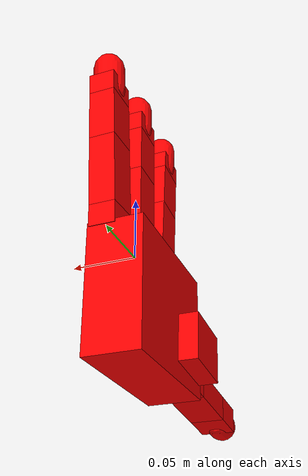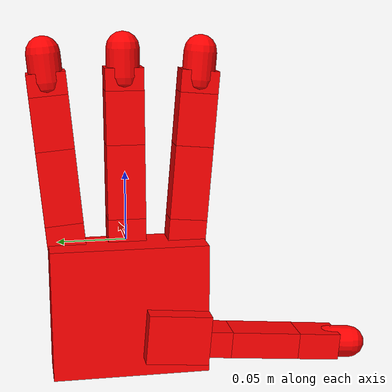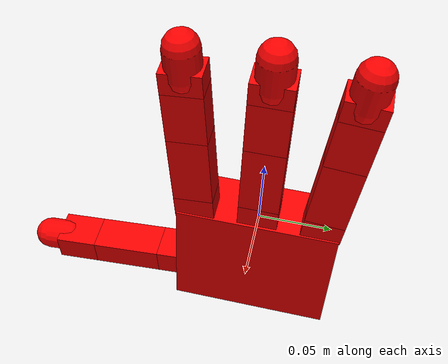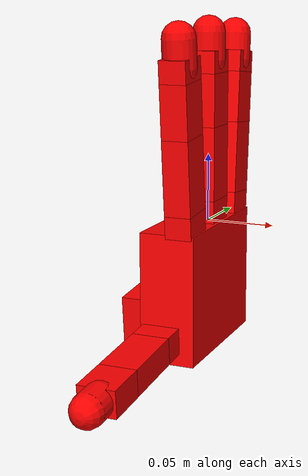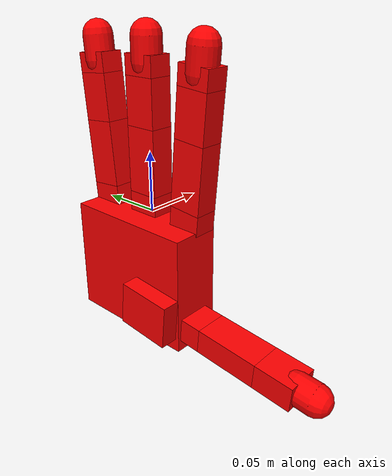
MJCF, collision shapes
<?xml version="1.0" ?>
<mujoco model="allegro_left">
	<compiler meshdir="allegro_left/meshes" texturedir="allegro_left/textures" angle="radian" autolimits="true" balanceinertia="true" boundmass="0.000001" boundinertia="0.000001"/>
	<default>
		<default class="visual">
			<geom contype="0" conaffinity="0"/>
		</default>
		<default class="collision">
			<geom rgba="1.0 0.0 0.0 0.0"/>
		</default>
	</default>
	<asset>
		<mesh name="base_link_left" file="stl/base_link_left.stl" scale="1.0 1.0 1.0"/>
		<mesh name="link_0_0" file="stl/link_0_0.stl" scale="1.0 1.0 1.0"/>
		<mesh name="link_1_0" file="stl/link_1_0.stl" scale="1.0 1.0 1.0"/>
		<mesh name="link_2_0" file="stl/link_2_0.stl" scale="1.0 1.0 1.0"/>
		<mesh name="link_3_0" file="stl/link_3_0.stl" scale="1.0 1.0 1.0"/>
		<mesh name="link_3_0_tip" file="stl/link_3_0_tip.stl" scale="1.0 1.0 1.0"/>
		<mesh name="link_12_0_left" file="stl/link_12_0_left.stl" scale="1.0 1.0 1.0"/>
		<mesh name="link_13_0" file="stl/link_13_0.stl" scale="1.0 1.0 1.0"/>
		<mesh name="link_14_0" file="stl/link_14_0.stl" scale="1.0 1.0 1.0"/>
		<mesh name="link_15_0" file="stl/link_15_0.stl" scale="1.0 1.0 1.0"/>
		<mesh name="link_15_0_tip" file="stl/link_15_0_tip.stl" scale="1.0 1.0 1.0"/>
		<material name="black" rgba="0.20000000298023224 0.20000000298023224 0.20000000298023224 1.0" emission="0.0" specular="0.5"/>
		<material name="white" rgba="0.8999999761581421 0.8999999761581421 0.8999999761581421 1.0" emission="0.0" specular="0.5"/>
	</asset>
	<worldbody>
		<body name="allegro_left" pos="0.0 0.0 0.0" quat="1.0 0.0 0.0 0.0">
			<body name="palm" pos="0.0 0.0 0.0" quat="1.0 0.0 0.0 0.0">
				<geom name="Geom_0" type="mesh" pos="-0.008981602266430855 0.003953646402806044 -0.040257327258586884" quat="0.4720723628997803 -0.8815444707870483 0.003127795411273837 0.00415464723482728" mesh="base_link_left" material="black" class="visual"/>
				<geom name="Geom_1" type="box" pos="-0.00930000003427267 0.0 -0.04749999940395355" quat="1.0 0.0 0.0 0.0" size="0.020400000736117363 0.05649999901652336 0.04749999940395355" class="collision"/>
				<body name="mf_base" pos="0.0 0.0 0.000699999975040555" quat="1.0 0.0 0.0 0.0">
					<inertial mass="0.007232016418129206" pos="-0.0007781272288411856 -1.0286681572324596e-05 0.00828249379992485" quat="0.6841335892677307 0.6859369277954102 -0.17537076771259308 0.1752052754163742" diaginertia="7.653767397641786e-07 6.888429311402433e-07 3.550456995071727e-07"/>
					<geom name="Geom_12" type="mesh" pos="-0.0007781272288411856 -1.0286681572324596e-05 0.00828249379992485" quat="0.6841325759887695 0.685935914516449 -0.1753745824098587 0.17520909011363983" mesh="link_0_0" material="black" class="visual"/>
					<geom name="Geom_13" type="box" pos="0.0 0.0 0.008200000040233135" quat="1.0 0.0 0.0 0.0" size="0.009800000116229057 0.013749999925494194 0.008200000040233135" class="collision"/>
					<joint name="mfj0" type="hinge" pos="0.0 0.0 0.0" range="-0.4699999988079071 0.4699999988079071" axis="0.0 0.0 1.0"/>
					<body name="mf_proximal" pos="0.0 0.0 0.01640000008046627" quat="1.0 0.0 0.0 0.0">
						<inertial mass="0.02727612294256687" pos="2.752533312389005e-08 -9.059566946234554e-05 0.02699976973235607" quat="1.0 -3.062632686123834e-06 1.740644087200316e-11 5.683489234797889e-06" diaginertia="1.1862359315273352e-05 1.1276808436377905e-05 2.2658684883936075e-06"/>
						<geom name="Geom_14" type="mesh" pos="2.752533312389005e-08 -9.059566946234554e-05 0.02699976973235607" quat="1.0 -3.062632686123834e-06 1.740644087200316e-11 5.683489234797889e-06" mesh="link_1_0" material="black" class="visual"/>
						<geom name="Geom_15" type="box" pos="0.0 0.0 0.027000000700354576" quat="1.0 0.0 0.0 0.0" size="0.009800000116229057 0.013749999925494194 0.027000000700354576" class="collision"/>
						<joint name="mfj1" type="hinge" pos="0.0 0.0 0.0" range="-0.19599999487400055 1.6100000143051147" axis="0.0 1.0 0.0"/>
						<body name="mf_medial" pos="0.0 0.0 0.05400000140070915" quat="1.0 0.0 0.0 0.0">
							<inertial mass="0.018463745713233948" pos="-0.0001928815763676539 -7.79042748035863e-05 0.02258601225912571" quat="0.9999030232429504 -0.0002869980817195028 0.013923503458499908 0.00017008630675263703" diaginertia="4.287327556085074e-06 3.6356423152028583e-06 1.6736697716623894e-06"/>
							<geom name="Geom_16" type="mesh" pos="-0.0001928815763676539 -7.79042748035863e-05 0.02258601225912571" quat="0.9999030232429504 -0.0002869980817195028 0.013923479244112968 0.00017008632130455226" mesh="link_2_0" material="black" class="visual"/>
							<geom name="Geom_17" type="box" pos="0.0 0.0 0.019200000911951065" quat="1.0 0.0 0.0 0.0" size="0.009800000116229057 0.013749999925494194 0.019200000911951065" class="collision"/>
							<joint name="mfj2" type="hinge" pos="0.0 0.0 0.0" range="-0.17399999499320984 1.7089999914169312" axis="0.0 1.0 0.0"/>
							<body name="mf_distal" pos="0.0 0.0 0.03840000182390213" quat="1.0 0.0 0.0 0.0">
								<inertial mass="0.007512311451137066" pos="-0.0005208061193116009 -3.324988711028709e-06 0.007251289673149586" quat="0.687752366065979 0.6877181529998779 0.16445226967334747 -0.16430427134037018" diaginertia="7.963795383147954e-07 7.281657872226788e-07 3.777521158099262e-07"/>
								<geom name="Geom_18" type="mesh" pos="-0.0005208061193116009 -3.324988711028709e-06 0.007251289673149586" quat="0.687752366065979 0.6877181529998779 0.16445223987102509 -0.1643042415380478" mesh="link_3_0" material="black" class="visual"/>
								<geom name="Geom_19" type="box" pos="0.0 0.0 0.00800000037997961" quat="1.0 0.0 0.0 0.0" size="0.009800000116229057 0.013749999925494194 0.00800000037997961" class="collision"/>
								<joint name="mfj3" type="hinge" pos="0.0 0.0 0.0" range="-0.22699999809265137 1.6180000305175781" axis="0.0 1.0 0.0"/>
								<body name="mf_tip" pos="0.0 0.0 0.0" quat="1.0 0.0 0.0 0.0">
									<inertial mass="0.006844521500170231" pos="2.0724932187077272e-11 -1.1561289881001358e-07 0.025402763858437538" quat="1.0 0.0 0.0 0.0" diaginertia="4.558230841666955e-07 4.558135913157457e-07 4.4955876887797785e-07"/>
									<geom name="Geom_20" type="mesh" pos="2.0724932187077272e-11 -1.1561289881001358e-07 0.025402763858437538" quat="1.0 0.0 0.0 0.0" mesh="link_3_0_tip" material="white" class="visual"/>
									<geom name="Geom_21" type="capsule" pos="0.0 0.0 0.01899999938905239" quat="1.0 0.0 0.0 0.0" size="0.012000000104308128 0.009999999776482582 0.0" class="collision"/>
								</body>
							</body>
						</body>
					</body>
				</body>
				<body name="ff_base" pos="0.0 -0.04349999874830246 -0.001541999983601272" quat="0.9990482330322266 0.04361940920352936 0.0 0.0">
					<inertial mass="0.007232016418129206" pos="-0.0007781272288411856 -1.0286681572324596e-05 0.00828249379992485" quat="0.6841335892677307 0.6859369277954102 -0.17537076771259308 0.1752052754163742" diaginertia="7.653767397641786e-07 6.888429311402433e-07 3.550456995071727e-07"/>
					<geom name="Geom_22" type="mesh" pos="-0.0007781272288411856 -1.0286681572324596e-05 0.00828249379992485" quat="0.6841325759887695 0.685935914516449 -0.1753745824098587 0.17520909011363983" mesh="link_0_0" material="black" class="visual"/>
					<geom name="Geom_23" type="box" pos="0.0 0.0 0.008200000040233135" quat="1.0 0.0 0.0 0.0" size="0.009800000116229057 0.013749999925494194 0.008200000040233135" class="collision"/>
					<joint name="ffj0" type="hinge" pos="0.0 0.0 0.0" range="-0.4699999988079071 0.4699999988079071" axis="0.0 0.0 1.0"/>
					<body name="ff_proximal" pos="0.0 0.0 0.01640000008046627" quat="1.0 0.0 0.0 0.0">
						<inertial mass="0.02727612294256687" pos="2.752533312389005e-08 -9.059566946234554e-05 0.02699976973235607" quat="1.0 -3.062632686123834e-06 1.740644087200316e-11 5.683489234797889e-06" diaginertia="1.1862359315273352e-05 1.1276808436377905e-05 2.2658684883936075e-06"/>
						<geom name="Geom_24" type="mesh" pos="2.752533312389005e-08 -9.059566946234554e-05 0.02699976973235607" quat="1.0 -3.062632686123834e-06 1.740644087200316e-11 5.683489234797889e-06" mesh="link_1_0" material="black" class="visual"/>
						<geom name="Geom_25" type="box" pos="0.0 0.0 0.027000000700354576" quat="1.0 0.0 0.0 0.0" size="0.009800000116229057 0.013749999925494194 0.027000000700354576" class="collision"/>
						<joint name="ffj1" type="hinge" pos="0.0 0.0 0.0" range="-0.19599999487400055 1.6100000143051147" axis="0.0 1.0 0.0"/>
						<body name="ff_medial" pos="0.0 0.0 0.05400000140070915" quat="1.0 0.0 0.0 0.0">
							<inertial mass="0.018463745713233948" pos="-0.0001928815763676539 -7.79042748035863e-05 0.02258601225912571" quat="0.9999030232429504 -0.0002869980817195028 0.013923503458499908 0.00017008630675263703" diaginertia="4.287327556085074e-06 3.6356423152028583e-06 1.6736697716623894e-06"/>
							<geom name="Geom_26" type="mesh" pos="-0.0001928815763676539 -7.79042748035863e-05 0.02258601225912571" quat="0.9999030232429504 -0.0002869980817195028 0.013923479244112968 0.00017008632130455226" mesh="link_2_0" material="black" class="visual"/>
							<geom name="Geom_27" type="box" pos="0.0 0.0 0.019200000911951065" quat="1.0 0.0 0.0 0.0" size="0.009800000116229057 0.013749999925494194 0.019200000911951065" class="collision"/>
							<joint name="ffj2" type="hinge" pos="0.0 0.0 0.0" range="-0.17399999499320984 1.7089999914169312" axis="0.0 1.0 0.0"/>
							<body name="ff_distal" pos="0.0 0.0 0.03840000182390213" quat="1.0 0.0 0.0 0.0">
								<inertial mass="0.007512311451137066" pos="-0.0005208061193116009 -3.324988711028709e-06 0.007251289673149586" quat="0.687752366065979 0.6877181529998779 0.16445226967334747 -0.16430427134037018" diaginertia="7.963795383147954e-07 7.281657872226788e-07 3.777521158099262e-07"/>
								<geom name="Geom_28" type="mesh" pos="-0.0005208061193116009 -3.324988711028709e-06 0.007251289673149586" quat="0.687752366065979 0.6877181529998779 0.16445223987102509 -0.1643042415380478" mesh="link_3_0" material="black" class="visual"/>
								<geom name="Geom_29" type="box" pos="0.0 0.0 0.00800000037997961" quat="1.0 0.0 0.0 0.0" size="0.009800000116229057 0.013749999925494194 0.00800000037997961" class="collision"/>
								<joint name="ffj3" type="hinge" pos="0.0 0.0 0.0" range="-0.22699999809265137 1.6180000305175781" axis="0.0 1.0 0.0"/>
								<body name="ff_tip" pos="0.0 0.0 0.0" quat="1.0 0.0 0.0 0.0">
									<inertial mass="0.006844521500170231" pos="2.0724932187077272e-11 -1.1561289881001358e-07 0.025402763858437538" quat="1.0 0.0 0.0 0.0" diaginertia="4.558230841666955e-07 4.558135913157457e-07 4.4955876887797785e-07"/>
									<geom name="Geom_30" type="mesh" pos="2.0724932187077272e-11 -1.1561289881001358e-07 0.025402763858437538" quat="1.0 0.0 0.0 0.0" mesh="link_3_0_tip" material="white" class="visual"/>
									<geom name="Geom_31" type="capsule" pos="0.0 0.0 0.01899999938905239" quat="1.0 0.0 0.0 0.0" size="0.012000000104308128 0.009999999776482582 0.0" class="collision"/>
								</body>
							</body>
						</body>
					</body>
				</body>
				<body name="th_base" pos="-0.018200000748038292 -0.019332999363541603 -0.045986998826265335" quat="0.47771409153938293 0.5213341116905212 -0.5213341116905212 0.47771409153938293">
					<inertial mass="0.04008788987994194" pos="-0.017917828634381294 -0.007726367563009262 0.011871053837239742" quat="0.7094714045524597 -0.049823980778455734 0.04688112065196037 0.7014057636260986" diaginertia="1.0974181350320578e-05 9.447705451748334e-06 7.300594006665051e-06"/>
					<geom name="Geom_32" type="mesh" pos="-0.017917828634381294 -0.007726367563009262 0.011871053837239742" quat="0.046881116926670074 0.7014057040214539 -0.7094714641571045 0.04982398822903633" mesh="link_12_0_left" material="black" class="visual"/>
					<geom name="Geom_33" type="box" pos="-0.017899999395012856 0.008999999612569809 0.014499999582767487" quat="1.0 0.0 0.0 0.0" size="0.017899999395012856 0.017000000923871994 0.022749999538064003" class="collision"/>
					<joint name="thj0" type="hinge" pos="0.0 0.0 0.0" range="0.2630000114440918 1.3960000276565552" axis="1.0 0.0 0.0"/>
					<body name="th_proximal" pos="-0.027000000700354576 -0.004999999888241291 0.039900001138448715" quat="1.0 0.0 0.0 0.0">
						<inertial mass="0.007219312246888876" pos="-0.0007820269092917442 -1.0249381375615485e-05 0.008104545064270496" quat="0.6839194893836975 0.6857205629348755 -0.17621275782585144 0.17604133486747742" diaginertia="7.637485737177485e-07 6.87399847265624e-07 3.53931511654082e-07"/>
						<geom name="Geom_34" type="mesh" pos="-0.0007820269092917442 -1.0249381375615485e-05 0.008104545064270496" quat="0.6839184761047363 0.6857195496559143 -0.17621660232543945 0.17604517936706543" mesh="link_13_0" material="black" class="visual"/>
						<geom name="Geom_35" type="box" pos="0.0 0.0 0.008849999867379665" quat="1.0 0.0 0.0 0.0" size="0.009800000116229057 0.013749999925494194 0.008849999867379665" class="collision"/>
						<joint name="thj1" type="hinge" pos="0.0 0.0 0.0" range="-0.10499999672174454 1.1629999876022339" axis="0.0 0.0 -1.0"/>
						<body name="th_medial" pos="0.0 0.0 0.01769999973475933" quat="1.0 0.0 0.0 0.0">
							<inertial mass="0.022496473044157028" pos="-0.0001643362920731306 1.714846075628884e-05 0.02111191675066948" quat="0.9999598264694214 3.035604277101811e-05 -0.008964241482317448 0.00011317774624330923" diaginertia="7.527637080784189e-06 6.583326012332691e-06 2.14106444218487e-06"/>
							<geom name="Geom_36" type="mesh" pos="-0.0001643362920731306 1.714846075628884e-05 0.02111191675066948" quat="0.9999598264694214 3.035604277101811e-05 -0.008964239619672298 0.00011317774624330923" mesh="link_14_0" material="black" class="visual"/>
							<geom name="Geom_37" type="box" pos="0.0 0.0 0.025699999183416367" quat="1.0 0.0 0.0 0.0" size="0.009800000116229057 0.013749999925494194 0.025699999183416367" class="collision"/>
							<joint name="thj2" type="hinge" pos="0.0 0.0 0.0" range="-0.1889999955892563 1.6440000534057617" axis="0.0 1.0 0.0"/>
							<body name="th_distal" pos="0.0 0.0 0.05139999836683273" quat="1.0 0.0 0.0 0.0">
								<inertial mass="0.016334496438503265" pos="-6.764516030655088e-12 3.6771950817637844e-06 0.013075033202767372" quat="0.9999980926513672 0.0019454479916021228 0.0 0.0" diaginertia="2.913777279900387e-06 2.590203166619176e-06 1.3565170320362085e-06"/>
								<geom name="Geom_38" type="mesh" pos="-6.764516030655088e-12 3.6771950817637844e-06 0.013075033202767372" quat="0.9999980926513672 0.0019454479916021228 0.0 0.0" mesh="link_15_0" material="black" class="visual"/>
								<geom name="Geom_39" type="box" pos="0.0 0.0 0.015699999406933784" quat="1.0 0.0 0.0 0.0" size="0.009800000116229057 0.013749999925494194 0.015699999406933784" class="collision"/>
								<joint name="thj3" type="hinge" pos="0.0 0.0 0.0" range="-0.16200000047683716 1.718999981880188" axis="0.0 1.0 0.0"/>
								<body name="th_tip" pos="0.0 0.0 0.0" quat="1.0 0.0 0.0 0.0">
									<inertial mass="0.006844521500170231" pos="2.0724932187077272e-11 -1.1561289881001358e-07 0.04100276529788971" quat="1.0 0.0 0.0 0.0" diaginertia="4.558230841666955e-07 4.558135913157457e-07 4.4955876887797785e-07"/>
									<geom name="Geom_40" type="mesh" pos="2.0724932187077272e-11 -1.1561289881001358e-07 0.04100276529788971" quat="1.0 0.0 0.0 0.0" mesh="link_15_0_tip" material="white" class="visual"/>
									<geom name="Geom_41" type="capsule" pos="0.0 0.0 0.03500000014901161" quat="1.0 0.0 0.0 0.0" size="0.012000000104308128 0.00800000037997961 0.0" class="collision"/>
								</body>
							</body>
						</body>
					</body>
				</body>
				<body name="rf_base" pos="0.0 0.04349999874830246 -0.001541999983601272" quat="0.9990482330322266 -0.04361940920352936 0.0 0.0">
					<inertial mass="0.007232016418129206" pos="-0.0007781272288411856 -1.0286681572324596e-05 0.00828249379992485" quat="0.6841335892677307 0.6859369277954102 -0.17537076771259308 0.1752052754163742" diaginertia="7.653767397641786e-07 6.888429311402433e-07 3.550456995071727e-07"/>
					<geom name="Geom_2" type="mesh" pos="-0.0007781272288411856 -1.0286681572324596e-05 0.00828249379992485" quat="0.6841325759887695 0.685935914516449 -0.1753745824098587 0.17520909011363983" mesh="link_0_0" material="black" class="visual"/>
					<geom name="Geom_3" type="box" pos="0.0 0.0 0.008200000040233135" quat="1.0 0.0 0.0 0.0" size="0.009800000116229057 0.013749999925494194 0.008200000040233135" class="collision"/>
					<joint name="rfj0" type="hinge" pos="0.0 0.0 0.0" range="-0.4699999988079071 0.4699999988079071" axis="0.0 0.0 1.0"/>
					<body name="rf_proximal" pos="0.0 0.0 0.01640000008046627" quat="1.0 0.0 0.0 0.0">
						<inertial mass="0.02727612294256687" pos="2.752533312389005e-08 -9.059566946234554e-05 0.02699976973235607" quat="1.0 -3.062632686123834e-06 1.740644087200316e-11 5.683489234797889e-06" diaginertia="1.1862359315273352e-05 1.1276808436377905e-05 2.2658684883936075e-06"/>
						<geom name="Geom_4" type="mesh" pos="2.752533312389005e-08 -9.059566946234554e-05 0.02699976973235607" quat="1.0 -3.062632686123834e-06 1.740644087200316e-11 5.683489234797889e-06" mesh="link_1_0" material="black" class="visual"/>
						<geom name="Geom_5" type="box" pos="0.0 0.0 0.027000000700354576" quat="1.0 0.0 0.0 0.0" size="0.009800000116229057 0.013749999925494194 0.027000000700354576" class="collision"/>
						<joint name="rfj1" type="hinge" pos="0.0 0.0 0.0" range="-0.19599999487400055 1.6100000143051147" axis="0.0 1.0 0.0"/>
						<body name="rf_medial" pos="0.0 0.0 0.05400000140070915" quat="1.0 0.0 0.0 0.0">
							<inertial mass="0.018463745713233948" pos="-0.0001928815763676539 -7.79042748035863e-05 0.02258601225912571" quat="0.9999030232429504 -0.0002869980817195028 0.013923503458499908 0.00017008630675263703" diaginertia="4.287327556085074e-06 3.6356423152028583e-06 1.6736697716623894e-06"/>
							<geom name="Geom_6" type="mesh" pos="-0.0001928815763676539 -7.79042748035863e-05 0.02258601225912571" quat="0.9999030232429504 -0.0002869980817195028 0.013923479244112968 0.00017008632130455226" mesh="link_2_0" material="black" class="visual"/>
							<geom name="Geom_7" type="box" pos="0.0 0.0 0.019200000911951065" quat="1.0 0.0 0.0 0.0" size="0.009800000116229057 0.013749999925494194 0.019200000911951065" class="collision"/>
							<joint name="rfj2" type="hinge" pos="0.0 0.0 0.0" range="-0.17399999499320984 1.7089999914169312" axis="0.0 1.0 0.0"/>
							<body name="rf_distal" pos="0.0 0.0 0.03840000182390213" quat="1.0 0.0 0.0 0.0">
								<inertial mass="0.007512311451137066" pos="-0.0005208061193116009 -3.324988711028709e-06 0.007251289673149586" quat="0.687752366065979 0.6877181529998779 0.16445226967334747 -0.16430427134037018" diaginertia="7.963795383147954e-07 7.281657872226788e-07 3.777521158099262e-07"/>
								<geom name="Geom_8" type="mesh" pos="-0.0005208061193116009 -3.324988711028709e-06 0.007251289673149586" quat="0.687752366065979 0.6877181529998779 0.16445223987102509 -0.1643042415380478" mesh="link_3_0" material="black" class="visual"/>
								<geom name="Geom_9" type="box" pos="0.0 0.0 0.00800000037997961" quat="1.0 0.0 0.0 0.0" size="0.009800000116229057 0.013749999925494194 0.00800000037997961" class="collision"/>
								<joint name="rfj3" type="hinge" pos="0.0 0.0 0.0" range="-0.22699999809265137 1.6180000305175781" axis="0.0 1.0 0.0"/>
								<body name="rf_tip" pos="0.0 0.0 0.0" quat="1.0 0.0 0.0 0.0">
									<inertial mass="0.006844521500170231" pos="2.0724932187077272e-11 -1.1561289881001358e-07 0.025402763858437538" quat="1.0 0.0 0.0 0.0" diaginertia="4.558230841666955e-07 4.558135913157457e-07 4.4955876887797785e-07"/>
									<geom name="Geom_10" type="mesh" pos="2.0724932187077272e-11 -1.1561289881001358e-07 0.025402763858437538" quat="1.0 0.0 0.0 0.0" mesh="link_3_0_tip" material="white" class="visual"/>
									<geom name="Geom_11" type="capsule" pos="0.0 0.0 0.01899999938905239" quat="1.0 0.0 0.0 0.0" size="0.012000000104308128 0.009999999776482582 0.0" class="collision"/>
								</body>
							</body>
						</body>
					</body>
				</body>
			</body>
		</body>
	</worldbody>
	<equality/>
</mujoco>
